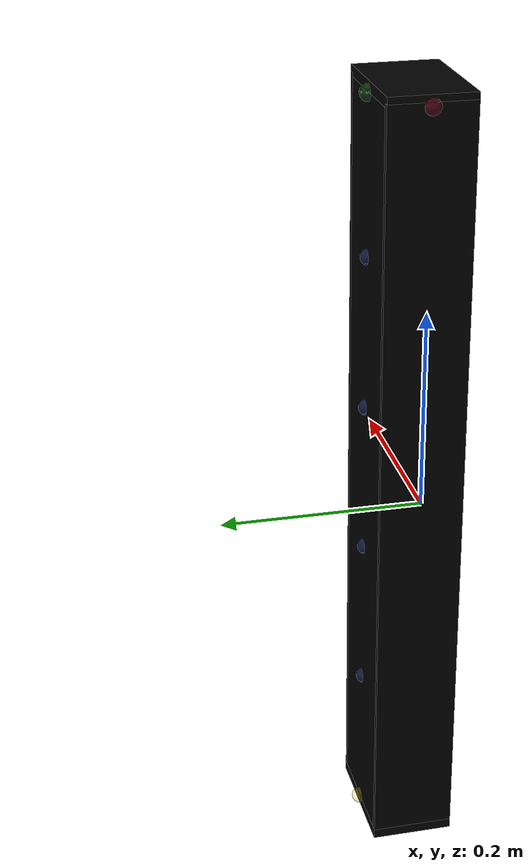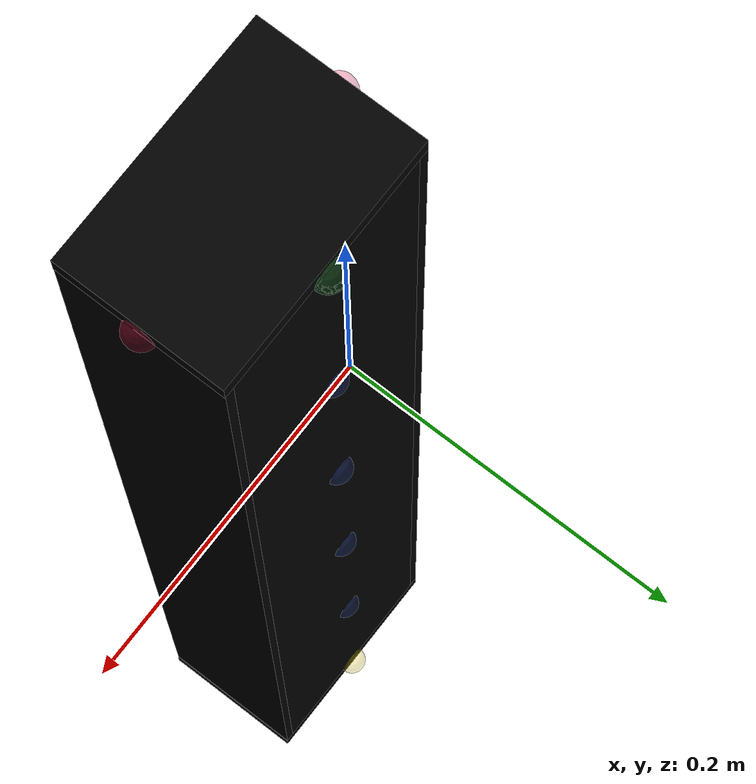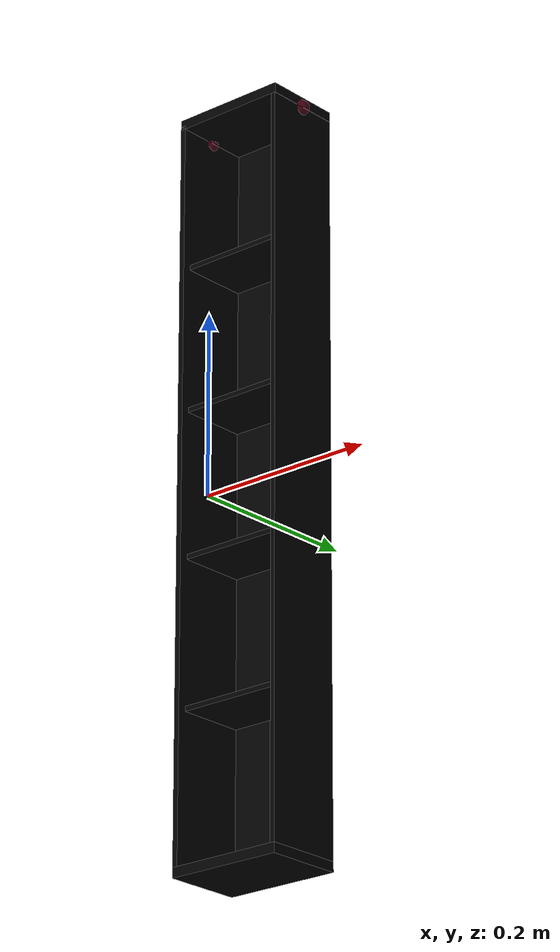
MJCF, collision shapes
<mujoco model="bookcase_besta_0165">
    <custom>
        <numeric data="-0.195705 0.029558 0.007606 0.48465 -0.51491 -0.484241 -0.515259" name="0_part0_initpos"/>
        <numeric data="-0.002543 0.202942 0.005304 1.0 0.0 0.0 0.000142" name="8_part8_initpos"/>
        <numeric data="0.211164 -0.212496 0.005304 0.0 -0.999534 -0.030518 0.0" name="7_part7_initpos"/>
        <numeric data="0.341642 0.088378 0.001037 0.707107 -0.707107 1.1e-05 -1.1e-05" name="6_part6_initpos"/>
        <numeric data="0.189434 0.342267 0.002633 0.999797 -0.0 -0.0 -0.020168" name="5_part5_initpos"/>
        <numeric data="0.182365 0.016163 0.002633 1.0 0.0 0.0 0.000421" name="4_part4_initpos"/>
        <numeric data="0.182186 0.158303 0.002633 1.0 0.0 0.0 0.0" name="3_part3_initpos"/>
        <numeric data="0.196062 -0.077061 0.002641 1.0 0.0 0.0 0.0" name="2_part2_initpos"/>
        <numeric data="-0.365249 0.064085 0.002599 0.48465 -0.51491 -0.484241 -0.515259" name="1_part1_initpos"/>
    </custom>
    <asset>
        <mesh file="bookcase_besta_0165/0.stl" name="part0" scale="0.00042 0.00042 0.00042"/>
        <mesh file="bookcase_besta_0165/8.stl" name="part8" scale="0.00042 0.00042 0.00042"/>
        <mesh file="bookcase_besta_0165/7.stl" name="part7" scale="0.00042 0.00042 0.00042"/>
        <mesh file="bookcase_besta_0165/6.stl" name="part6" scale="0.00042 0.00042 0.00042"/>
        <mesh file="bookcase_besta_0165/5.stl" name="part5" scale="0.00042 0.00042 0.00042"/>
        <mesh file="bookcase_besta_0165/4.stl" name="part4" scale="0.00042 0.00042 0.00042"/>
        <mesh file="bookcase_besta_0165/3.stl" name="part3" scale="0.00042 0.00042 0.00042"/>
        <mesh file="bookcase_besta_0165/2.stl" name="part2" scale="0.00042 0.00042 0.00042"/>
        <mesh file="bookcase_besta_0165/1.stl" name="part1" scale="0.00042 0.00042 0.00042"/>
    </asset>
    <equality>
        <weld active="false" body1="7_part7" body2="1_part1" solimp="1 1 0.5" solref="0.01 0.3"/>
        <weld active="false" body1="6_part6" body2="5_part5" solimp="1 1 0.5" solref="0.01 0.3"/>
        <weld active="false" body1="6_part6" body2="4_part4" solimp="1 1 0.5" solref="0.01 0.3"/>
        <weld active="false" body1="6_part6" body2="2_part2" solimp="1 1 0.5" solref="0.01 0.3"/>
        <weld active="false" body1="8_part8" body2="6_part6" solimp="1 1 0.5" solref="0.01 0.3"/>
        <weld active="false" body1="0_part0" body2="7_part7" solimp="1 1 0.5" solref="0.01 0.3"/>
        <weld active="false" body1="8_part8" body2="6_part6" solimp="1 1 0.5" solref="0.01 0.3"/>
        <weld active="false" body1="8_part8" body2="1_part1" solimp="1 1 0.5" solref="0.01 0.3"/>
        <weld active="false" body1="6_part6" body2="5_part5" solimp="1 1 0.5" solref="0.01 0.3"/>
        <weld active="false" body1="6_part6" body2="2_part2" solimp="1 1 0.5" solref="0.01 0.3"/>
        <weld active="false" body1="7_part7" body2="6_part6" solimp="1 1 0.5" solref="0.01 0.3"/>
        <weld active="false" body1="6_part6" body2="3_part3" solimp="1 1 0.5" solref="0.01 0.3"/>
        <weld active="false" body1="7_part7" body2="6_part6" solimp="1 1 0.5" solref="0.01 0.3"/>
        <weld active="false" body1="0_part0" body2="8_part8" solimp="1 1 0.5" solref="0.01 0.3"/>
        <weld active="false" body1="6_part6" body2="4_part4" solimp="1 1 0.5" solref="0.01 0.3"/>
        <weld active="false" body1="0_part0" body2="8_part8" solimp="1 1 0.5" solref="0.01 0.3"/>
        <weld active="false" body1="1_part1" body2="8_part8" solimp="1 1 0.5" solref="0.01 0.3"/>
    </equality>
    <worldbody>
        <body name="0_part0" pos="0.0 -0.0 -0.0" quat="1 0 0 0">
            <geom conaffinity="0" contype="0" density="0" mesh="part0" name="0_part0_mesh" pos="0.0 0.0 0.0"
                  rgba="0.82 0.71 0.55 1" type="mesh"/>
            <site name="0_part0_horizontal_radius_site" pos="0.0 -0.0 -0.0" quat="1 0 0 0" rgba="0 0 0 0"
                  size="0.0084"/>
            <site name="0_part0_top_site" pos="0.0 0.0 0.39471599999999996" quat="1 0 0 0" rgba="0 0 0 0"
                  size="0.0084"/>
            <site name="0_part0_bottom_site" pos="0.0 0.0 -0.39471599999999996" quat="1 0 0 0" rgba="0 0 0 0"
                  size="0.0084"/>
            <site name="0_part0_corner_site8" pos="-0.0026669999999999997 0.042671999999999995 0.39471599999999996"
                  quat="1 0 0 0" rgba="0 0 0 0" size="0.0084"/>
            <site name="0_part0_corner_site7" pos="0.0026669999999999997 0.042671999999999995 0.39471599999999996"
                  quat="1 0 0 0" rgba="0 0 0 0" size="0.0084"/>
            <site name="0_part0_corner_site6" pos="0.0026669999999999997 -0.042671999999999995 0.39471599999999996"
                  quat="1 0 0 0" rgba="0 0 0 0" size="0.0084"/>
            <site name="0_part0_corner_site5" pos="-0.0026669999999999997 -0.042671999999999995 0.39471599999999996"
                  quat="1 0 0 0" rgba="0 0 0 0" size="0.0084"/>
            <site name="0_part0_corner_site4" pos="-0.0026669999999999997 0.042671999999999995 -0.39471599999999996"
                  quat="1 0 0 0" rgba="0 0 0 0" size="0.0084"/>
            <site name="0_part0_corner_site3" pos="0.0026669999999999997 0.042671999999999995 -0.39471599999999996"
                  quat="1 0 0 0" rgba="0 0 0 0" size="0.0084"/>
            <site name="0_part0_corner_site2" pos="0.0026669999999999997 -0.042671999999999995 -0.39471599999999996"
                  quat="1 0 0 0" rgba="0 0 0 0" size="0.0084"/>
            <site name="0_part0_corner_site1" pos="-0.0026669999999999997 -0.042671999999999995 -0.39471599999999996"
                  quat="1 0 0 0" rgba="0 0 0 0" size="0.0084"/>
            <site name="wall-top,0,180,conn_site2" pos="-0.0004116 0.0 0.394212" quat="1 0 0 0"
                  rgba="0.9019 0.0980 0.2941 0.3" size="0.0084"/>
            <geom density="50" name="noviz_collision_0_part0_0" pos="0.0001428 0.0 0.0018732000000000002" quat="1 0 0 0"
                  rgba="0 0 0 0" size="0.002814 0.042671999999999995 0.3965892" solref="0.001 1" type="box"/>
        </body>
        <body name="8_part8" pos="0.06134100000000001 -0.0 0.400049991684" quat="1 0 0 0">
            <geom conaffinity="0" contype="0" density="0" mesh="part8" name="8_part8_mesh" pos="0.0 0.0 0.0"
                  rgba="0.82 0.71 0.55 1" type="mesh"/>
            <site name="8_part8_horizontal_radius_site" pos="0.0 -0.0 -0.0" quat="1 0 0 0" rgba="0 0 0 0"
                  size="0.0084"/>
            <site name="8_part8_top_site" pos="0.0 0.0 0.005334008316" quat="1 0 0 0" rgba="0 0 0 0" size="0.0084"/>
            <site name="8_part8_bottom_site" pos="0.0 0.0 -0.005334008316" quat="1 0 0 0" rgba="0 0 0 0" size="0.0084"/>
            <site name="8_part8_corner_site8" pos="-0.064008 0.042671999999999995 0.005334008316" quat="1 0 0 0"
                  rgba="0 0 0 0" size="0.0084"/>
            <site name="8_part8_corner_site7" pos="0.064008 0.042671999999999995 0.005334008316" quat="1 0 0 0"
                  rgba="0 0 0 0" size="0.0084"/>
            <site name="8_part8_corner_site6" pos="0.064008 -0.042671999999999995 0.005334008316" quat="1 0 0 0"
                  rgba="0 0 0 0" size="0.0084"/>
            <site name="8_part8_corner_site5" pos="-0.064008 -0.042671999999999995 0.005334008316" quat="1 0 0 0"
                  rgba="0 0 0 0" size="0.0084"/>
            <site name="8_part8_corner_site4" pos="-0.064008 0.042671999999999995 -0.005334008316" quat="1 0 0 0"
                  rgba="0 0 0 0" size="0.0084"/>
            <site name="8_part8_corner_site3" pos="0.064008 0.042671999999999995 -0.005334008316" quat="1 0 0 0"
                  rgba="0 0 0 0" size="0.0084"/>
            <site name="8_part8_corner_site2" pos="0.064008 -0.042671999999999995 -0.005334008316" quat="1 0 0 0"
                  rgba="0 0 0 0" size="0.0084"/>
            <site name="8_part8_corner_site1" pos="-0.064008 -0.042671999999999995 -0.005334008316" quat="1 0 0 0"
                  rgba="0 0 0 0" size="0.0084"/>
            <site name="top-wall,0,180,conn_site2" pos="-0.0617568 0.0 -0.0058379999999999994" quat="1 0 0 0"
                  rgba="0.9019 0.0980 0.2941 0.3" size="0.0084"/>
            <site name="top-wall,0,180,conn_site1" pos="0.062664 0.0 -0.0058379999999999994" quat="1 0 0 0"
                  rgba="0.9019 0.0980 0.2941 0.3" size="0.0084"/>
            <site name="top-back,0,conn_site1" pos="0.0 0.042881999999999997 -0.0059640000000000006" quat="1 0 0 0"
                  rgba="0.2352 0.7058 0.2941 0.3" size="0.0084"/>
            <geom density="50" name="noviz_collision_8_part8_0" pos="0.0 0.0 0.0" quat="1 0 0 0" rgba="0 0 0 0"
                  size="0.064008 0.042671999999999995 0.005333999999999999" solref="0.001 1" type="box"/>
        </body>
        <body name="7_part7" pos="0.06134100000000001 -0.0 -0.40005" quat="1 0 0 0">
            <geom conaffinity="0" contype="0" density="0" mesh="part7" name="7_part7_mesh" pos="0.0 0.0 0.0"
                  rgba="0.82 0.71 0.55 1" type="mesh"/>
            <site name="7_part7_horizontal_radius_site" pos="0.0 -0.0 -4.2e-11" quat="1 0 0 0" rgba="0 0 0 0"
                  size="0.0084"/>
            <site name="7_part7_top_site" pos="0.0 0.0 0.0053339999579999995" quat="1 0 0 0" rgba="0 0 0 0"
                  size="0.0084"/>
            <site name="7_part7_bottom_site" pos="0.0 0.0 -0.005334000042" quat="1 0 0 0" rgba="0 0 0 0" size="0.0084"/>
            <site name="7_part7_corner_site8" pos="-0.064008 0.042671999999999995 0.0053339999579999995" quat="1 0 0 0"
                  rgba="0 0 0 0" size="0.0084"/>
            <site name="7_part7_corner_site7" pos="0.064008 0.042671999999999995 0.0053339999579999995" quat="1 0 0 0"
                  rgba="0 0 0 0" size="0.0084"/>
            <site name="7_part7_corner_site6" pos="0.064008 -0.042671999999999995 0.0053339999579999995" quat="1 0 0 0"
                  rgba="0 0 0 0" size="0.0084"/>
            <site name="7_part7_corner_site5" pos="-0.064008 -0.042671999999999995 0.0053339999579999995" quat="1 0 0 0"
                  rgba="0 0 0 0" size="0.0084"/>
            <site name="7_part7_corner_site4" pos="-0.064008 0.042671999999999995 -0.005334000042" quat="1 0 0 0"
                  rgba="0 0 0 0" size="0.0084"/>
            <site name="7_part7_corner_site3" pos="0.064008 0.042671999999999995 -0.005334000042" quat="1 0 0 0"
                  rgba="0 0 0 0" size="0.0084"/>
            <site name="7_part7_corner_site2" pos="0.064008 -0.042671999999999995 -0.005334000042" quat="1 0 0 0"
                  rgba="0 0 0 0" size="0.0084"/>
            <site name="7_part7_corner_site1" pos="-0.064008 -0.042671999999999995 -0.005334000042" quat="1 0 0 0"
                  rgba="0 0 0 0" size="0.0084"/>
            <site name="bottom-back,0,conn_site1" pos="0.0 0.042848399999999995 0.004779599999999999" quat="1 0 0 0"
                  rgba="1.0 0.8823 0.0980 0.3" size="0.0084"/>
            <geom density="50" name="noviz_collision_7_part7_0" pos="0.0 0.0 0.0" quat="1 0 0 0" rgba="0 0 0 0"
                  size="0.064008 0.042671999999999995 0.005333999999999999" solref="0.001 1" type="box"/>
        </body>
        <body name="6_part6" pos="0.06134100000000001 0.0416052 -0.0" quat="1 0 0 0">
            <geom conaffinity="0" contype="0" density="0" mesh="part6" name="6_part6_mesh" pos="0.0 0.0 0.0"
                  rgba="0.82 0.71 0.55 1" type="mesh"/>
            <site name="6_part6_horizontal_radius_site" pos="-1.26e-09 0.0 -0.0" quat="1 0 0 0" rgba="0 0 0 0"
                  size="0.0084"/>
            <site name="6_part6_top_site" pos="-1.26e-09 0.0 0.39471599999999996" quat="1 0 0 0" rgba="0 0 0 0"
                  size="0.0084"/>
            <site name="6_part6_bottom_site" pos="-1.26e-09 0.0 -0.39471599999999996" quat="1 0 0 0" rgba="0 0 0 0"
                  size="0.0084"/>
            <site name="6_part6_corner_site8" pos="-0.058674001260000004 0.0010668000000000001 0.39471599999999996"
                  quat="1 0 0 0" rgba="0 0 0 0" size="0.0084"/>
            <site name="6_part6_corner_site7" pos="0.05867399874 0.0010668000000000001 0.39471599999999996"
                  quat="1 0 0 0" rgba="0 0 0 0" size="0.0084"/>
            <site name="6_part6_corner_site6" pos="0.05867399874 -0.0010668000000000001 0.39471599999999996"
                  quat="1 0 0 0" rgba="0 0 0 0" size="0.0084"/>
            <site name="6_part6_corner_site5" pos="-0.058674001260000004 -0.0010668000000000001 0.39471599999999996"
                  quat="1 0 0 0" rgba="0 0 0 0" size="0.0084"/>
            <site name="6_part6_corner_site4" pos="-0.058674001260000004 0.0010668000000000001 -0.39471599999999996"
                  quat="1 0 0 0" rgba="0 0 0 0" size="0.0084"/>
            <site name="6_part6_corner_site3" pos="0.05867399874 0.0010668000000000001 -0.39471599999999996"
                  quat="1 0 0 0" rgba="0 0 0 0" size="0.0084"/>
            <site name="6_part6_corner_site2" pos="0.05867399874 -0.0010668000000000001 -0.39471599999999996"
                  quat="1 0 0 0" rgba="0 0 0 0" size="0.0084"/>
            <site name="6_part6_corner_site1" pos="-0.058674001260000004 -0.0010668000000000001 -0.39471599999999996"
                  quat="1 0 0 0" rgba="0 0 0 0" size="0.0084"/>
            <site name="back-shelf,0,180,conn_site4" pos="0.0 -0.0016715999999999999 -0.0762804"
                  quat="0.7071067 -0.7071068 0 0" rgba="0.2627 0.3882 0.8470 0.3" size="0.0084"/>
            <site name="back-shelf,0,180,conn_site3" pos="0.0 -0.001932 -0.23557799999999998"
                  quat="0.7071067 -0.7071068 0 0" rgba="0.2627 0.3882 0.8470 0.3" size="0.0084"/>
            <site name="back-shelf,0,180,conn_site2" pos="0.0 -0.0010668000000000001 0.0809592"
                  quat="0.7071067 -0.7071068 0 0" rgba="0.2627 0.3882 0.8470 0.3" size="0.0084"/>
            <site name="back-shelf,0,180,conn_site1" pos="0.0 -0.0012431999999999999 0.23739239999999998"
                  quat="0.7071067 -0.7071068 0 0" rgba="0.2627 0.3882 0.8470 0.3" size="0.0084"/>
            <site name="back-top,0,conn_site1" pos="0.0 0.0012768 0.394086" quat="1 0 0 0"
                  rgba="0.2352 0.7058 0.2941 0.3" size="0.0084"/>
            <site name="back-bottom,0,conn_site1" pos="0.0 0.0012431999999999999 -0.39527039999999997" quat="1 0 0 0"
                  rgba="1.0 0.8823 0.0980 0.3" size="0.0084"/>
            <geom density="50" name="noviz_collision_6_part6_0" pos="0.0 0.0 0.0" quat="1 0 0 0" rgba="0 0 0 0"
                  size="0.058674 0.0010668000000000001 0.39471599999999996" solref="0.001 1" type="box"/>
        </body>
        <body name="5_part5" pos="0.06134100000000001 0.0037338018899999996 0.2394966" quat="1 0 0 0">
            <geom conaffinity="0" contype="0" density="0" mesh="part5" name="5_part5_mesh" pos="0.0 0.0 0.0"
                  rgba="0.82 0.71 0.55 1" type="mesh"/>
            <site name="5_part5_horizontal_radius_site" pos="-1.26e-09 0.0 0.0" quat="1 0 0 0" rgba="0 0 0 0"
                  size="0.0084"/>
            <site name="5_part5_top_site" pos="-1.26e-09 0.0 0.0026669999999999997" quat="1 0 0 0" rgba="0 0 0 0"
                  size="0.0084"/>
            <site name="5_part5_bottom_site" pos="-1.26e-09 0.0 -0.0026669999999999997" quat="1 0 0 0" rgba="0 0 0 0"
                  size="0.0084"/>
            <site name="5_part5_corner_site8" pos="-0.058674001260000004 0.036804602058 0.0026669999999999997"
                  quat="1 0 0 0" rgba="0 0 0 0" size="0.0084"/>
            <site name="5_part5_corner_site7" pos="0.05867399874 0.036804602058 0.0026669999999999997" quat="1 0 0 0"
                  rgba="0 0 0 0" size="0.0084"/>
            <site name="5_part5_corner_site6" pos="0.05867399874 -0.036804602058 0.0026669999999999997" quat="1 0 0 0"
                  rgba="0 0 0 0" size="0.0084"/>
            <site name="5_part5_corner_site5" pos="-0.058674001260000004 -0.036804602058 0.0026669999999999997"
                  quat="1 0 0 0" rgba="0 0 0 0" size="0.0084"/>
            <site name="5_part5_corner_site4" pos="-0.058674001260000004 0.036804602058 -0.0026669999999999997"
                  quat="1 0 0 0" rgba="0 0 0 0" size="0.0084"/>
            <site name="5_part5_corner_site3" pos="0.05867399874 0.036804602058 -0.0026669999999999997" quat="1 0 0 0"
                  rgba="0 0 0 0" size="0.0084"/>
            <site name="5_part5_corner_site2" pos="0.05867399874 -0.036804602058 -0.0026669999999999997" quat="1 0 0 0"
                  rgba="0 0 0 0" size="0.0084"/>
            <site name="5_part5_corner_site1" pos="-0.058674001260000004 -0.036804602058 -0.0026669999999999997"
                  quat="1 0 0 0" rgba="0 0 0 0" size="0.0084"/>
            <site name="shelf-back,0,180,conn_site4" pos="0.0 0.036204 -0.31577279999999996"
                  quat="0.7071067 -0.7071068 0 0" rgba="0.2627 0.3882 0.8470 0.3" size="0.0084"/>
            <site name="shelf-back,0,180,conn_site1" pos="0.0 0.036624 -0.0021084" quat="0.7071067 -0.7071068 0 0"
                  rgba="0.2627 0.3882 0.8470 0.3" size="0.0084"/>
            <geom density="50" name="noviz_collision_5_part5_0" pos="0.0 0.0 0.0" quat="1 0 0 0" rgba="0 0 0 0"
                  size="0.058674 0.036808799999999996 0.0026628" solref="0.001 1" type="box"/>
        </body>
        <body name="4_part4" pos="0.06134100000000001 0.0037338018899999996 0.08161021314599999" quat="1 0 0 0">
            <geom conaffinity="0" contype="0" density="0" mesh="part4" name="4_part4_mesh" pos="0.0 0.0 0.0"
                  rgba="0.82 0.71 0.55 1" type="mesh"/>
            <site name="4_part4_horizontal_radius_site" pos="-1.26e-09 0.0 0.0" quat="1 0 0 0" rgba="0 0 0 0"
                  size="0.0084"/>
            <site name="4_part4_top_site" pos="-1.26e-09 0.0 0.002667015372" quat="1 0 0 0" rgba="0 0 0 0"
                  size="0.0084"/>
            <site name="4_part4_bottom_site" pos="-1.26e-09 0.0 -0.002667015372" quat="1 0 0 0" rgba="0 0 0 0"
                  size="0.0084"/>
            <site name="4_part4_corner_site8" pos="-0.058674001260000004 0.036804602058 0.002667015372" quat="1 0 0 0"
                  rgba="0 0 0 0" size="0.0084"/>
            <site name="4_part4_corner_site7" pos="0.05867399874 0.036804602058 0.002667015372" quat="1 0 0 0"
                  rgba="0 0 0 0" size="0.0084"/>
            <site name="4_part4_corner_site6" pos="0.05867399874 -0.036804602058 0.002667015372" quat="1 0 0 0"
                  rgba="0 0 0 0" size="0.0084"/>
            <site name="4_part4_corner_site5" pos="-0.058674001260000004 -0.036804602058 0.002667015372" quat="1 0 0 0"
                  rgba="0 0 0 0" size="0.0084"/>
            <site name="4_part4_corner_site4" pos="-0.058674001260000004 0.036804602058 -0.002667015372" quat="1 0 0 0"
                  rgba="0 0 0 0" size="0.0084"/>
            <site name="4_part4_corner_site3" pos="0.05867399874 0.036804602058 -0.002667015372" quat="1 0 0 0"
                  rgba="0 0 0 0" size="0.0084"/>
            <site name="4_part4_corner_site2" pos="0.05867399874 -0.036804602058 -0.002667015372" quat="1 0 0 0"
                  rgba="0 0 0 0" size="0.0084"/>
            <site name="4_part4_corner_site1" pos="-0.058674001260000004 -0.036804602058 -0.002667015372" quat="1 0 0 0"
                  rgba="0 0 0 0" size="0.0084"/>
            <site name="shelf-back,0,180,conn_site2" pos="0.0 0.0368004 -0.0006552" quat="0.7071067 -0.7071068 0 0"
                  rgba="0.2627 0.3882 0.8470 0.3" size="0.0084"/>
            <geom density="50" name="noviz_collision_4_part4_0" pos="0.0 0.0 0.0" quat="1 0 0 0" rgba="0 0 0 0"
                  size="0.058674 0.036808799999999996 0.0026628" solref="0.001 1" type="box"/>
        </body>
        <body name="3_part3" pos="0.06134100000000001 0.0037338018899999996 -0.076276195002" quat="1 0 0 0">
            <geom conaffinity="0" contype="0" density="0" mesh="part3" name="3_part3_mesh" pos="0.0 0.0 0.0"
                  rgba="0.82 0.71 0.55 1" type="mesh"/>
            <site name="3_part3_horizontal_radius_site" pos="-1.26e-09 0.0 -4.2e-11" quat="1 0 0 0" rgba="0 0 0 0"
                  size="0.0084"/>
            <site name="3_part3_top_site" pos="-1.26e-09 0.0 0.002667004956" quat="1 0 0 0" rgba="0 0 0 0"
                  size="0.0084"/>
            <site name="3_part3_bottom_site" pos="-1.26e-09 0.0 -0.00266700504" quat="1 0 0 0" rgba="0 0 0 0"
                  size="0.0084"/>
            <site name="3_part3_corner_site8" pos="-0.058674001260000004 0.036804602058 0.002667004956" quat="1 0 0 0"
                  rgba="0 0 0 0" size="0.0084"/>
            <site name="3_part3_corner_site7" pos="0.05867399874 0.036804602058 0.002667004956" quat="1 0 0 0"
                  rgba="0 0 0 0" size="0.0084"/>
            <site name="3_part3_corner_site6" pos="0.05867399874 -0.036804602058 0.002667004956" quat="1 0 0 0"
                  rgba="0 0 0 0" size="0.0084"/>
            <site name="3_part3_corner_site5" pos="-0.058674001260000004 -0.036804602058 0.002667004956" quat="1 0 0 0"
                  rgba="0 0 0 0" size="0.0084"/>
            <site name="3_part3_corner_site4" pos="-0.058674001260000004 0.036804602058 -0.00266700504" quat="1 0 0 0"
                  rgba="0 0 0 0" size="0.0084"/>
            <site name="3_part3_corner_site3" pos="0.05867399874 0.036804602058 -0.00266700504" quat="1 0 0 0"
                  rgba="0 0 0 0" size="0.0084"/>
            <site name="3_part3_corner_site2" pos="0.05867399874 -0.036804602058 -0.00266700504" quat="1 0 0 0"
                  rgba="0 0 0 0" size="0.0084"/>
            <site name="3_part3_corner_site1" pos="-0.058674001260000004 -0.036804602058 -0.00266700504" quat="1 0 0 0"
                  rgba="0 0 0 0" size="0.0084"/>
            <geom density="50" name="noviz_collision_3_part3_0" pos="0.0 0.0 0.0" quat="1 0 0 0" rgba="0 0 0 0"
                  size="0.058674 0.036808799999999996 0.0026628" solref="0.001 1" type="box"/>
        </body>
        <body name="2_part2" pos="0.06134100000000001 0.0037338018899999996 -0.234162606762" quat="1 0 0 0">
            <geom conaffinity="0" contype="0" density="0" mesh="part2" name="2_part2_mesh" pos="0.0 0.0 0.0"
                  rgba="0.82 0.71 0.55 1" type="mesh"/>
            <site name="2_part2_horizontal_radius_site" pos="-1.26e-09 0.0 -0.0" quat="1 0 0 0" rgba="0 0 0 0"
                  size="0.0084"/>
            <site name="2_part2_top_site" pos="-1.26e-09 0.0 0.002667006762" quat="1 0 0 0" rgba="0 0 0 0"
                  size="0.0084"/>
            <site name="2_part2_bottom_site" pos="-1.26e-09 0.0 -0.002667006762" quat="1 0 0 0" rgba="0 0 0 0"
                  size="0.0084"/>
            <site name="2_part2_corner_site8" pos="-0.058674001260000004 0.036804602058 0.002667006762" quat="1 0 0 0"
                  rgba="0 0 0 0" size="0.0084"/>
            <site name="2_part2_corner_site7" pos="0.05867399874 0.036804602058 0.002667006762" quat="1 0 0 0"
                  rgba="0 0 0 0" size="0.0084"/>
            <site name="2_part2_corner_site6" pos="0.05867399874 -0.036804602058 0.002667006762" quat="1 0 0 0"
                  rgba="0 0 0 0" size="0.0084"/>
            <site name="2_part2_corner_site5" pos="-0.058674001260000004 -0.036804602058 0.002667006762" quat="1 0 0 0"
                  rgba="0 0 0 0" size="0.0084"/>
            <site name="2_part2_corner_site4" pos="-0.058674001260000004 0.036804602058 -0.002667006762" quat="1 0 0 0"
                  rgba="0 0 0 0" size="0.0084"/>
            <site name="2_part2_corner_site3" pos="0.05867399874 0.036804602058 -0.002667006762" quat="1 0 0 0"
                  rgba="0 0 0 0" size="0.0084"/>
            <site name="2_part2_corner_site2" pos="0.05867399874 -0.036804602058 -0.002667006762" quat="1 0 0 0"
                  rgba="0 0 0 0" size="0.0084"/>
            <site name="2_part2_corner_site1" pos="-0.058674001260000004 -0.036804602058 -0.002667006762" quat="1 0 0 0"
                  rgba="0 0 0 0" size="0.0084"/>
            <site name="shelf-back,0,180,conn_site3" pos="0.0 0.0359436 -0.0014112" quat="0.7071067 -0.7071068 0 0"
                  rgba="0.2627 0.3882 0.8470 0.3" size="0.0084"/>
            <geom density="50" name="noviz_collision_2_part2_0" pos="0.0 0.0 0.0" quat="1 0 0 0" rgba="0 0 0 0"
                  size="0.058674 0.036808799999999996 0.0026712" solref="0.001 1" type="box"/>
        </body>
        <body name="1_part1" pos="0.12268200000000001 -0.0 -0.0" quat="1 0 0 0">
            <geom conaffinity="0" contype="0" density="0" mesh="part1" name="1_part1_mesh" pos="0.0 0.0 0.0"
                  rgba="0.82 0.71 0.55 1" type="mesh"/>
            <site name="1_part1_horizontal_radius_site" pos="-0.0 -0.0 -0.0" quat="1 0 0 0" rgba="0 0 0 0"
                  size="0.0084"/>
            <site name="1_part1_top_site" pos="0.0 0.0 0.39471599999999996" quat="1 0 0 0" rgba="0 0 0 0"
                  size="0.0084"/>
            <site name="1_part1_bottom_site" pos="0.0 0.0 -0.39471599999999996" quat="1 0 0 0" rgba="0 0 0 0"
                  size="0.0084"/>
            <site name="1_part1_corner_site8" pos="-0.0026669999999999997 0.042671999999999995 0.39471599999999996"
                  quat="1 0 0 0" rgba="0 0 0 0" size="0.0084"/>
            <site name="1_part1_corner_site7" pos="0.0026669999999999997 0.042671999999999995 0.39471599999999996"
                  quat="1 0 0 0" rgba="0 0 0 0" size="0.0084"/>
            <site name="1_part1_corner_site6" pos="0.0026669999999999997 -0.042671999999999995 0.39471599999999996"
                  quat="1 0 0 0" rgba="0 0 0 0" size="0.0084"/>
            <site name="1_part1_corner_site5" pos="-0.0026669999999999997 -0.042671999999999995 0.39471599999999996"
                  quat="1 0 0 0" rgba="0 0 0 0" size="0.0084"/>
            <site name="1_part1_corner_site4" pos="-0.0026669999999999997 0.042671999999999995 -0.39471599999999996"
                  quat="1 0 0 0" rgba="0 0 0 0" size="0.0084"/>
            <site name="1_part1_corner_site3" pos="0.0026669999999999997 0.042671999999999995 -0.39471599999999996"
                  quat="1 0 0 0" rgba="0 0 0 0" size="0.0084"/>
            <site name="1_part1_corner_site2" pos="0.0026669999999999997 -0.042671999999999995 -0.39471599999999996"
                  quat="1 0 0 0" rgba="0 0 0 0" size="0.0084"/>
            <site name="1_part1_corner_site1" pos="-0.0026669999999999997 -0.042671999999999995 -0.39471599999999996"
                  quat="1 0 0 0" rgba="0 0 0 0" size="0.0084"/>
            <geom density="50" name="noviz_collision_1_part1_0" pos="-0.0001428 0.0 0.0018732000000000002"
                  quat="1 0 0 0" rgba="0 0 0 0" size="0.00252 0.042671999999999995 0.3965892" solref="0.001 1"
                  type="box"/>
        </body>
    </worldbody>
    <actuator/>
    <sensor/>
    <contact/>
    <default/>
</mujoco>
